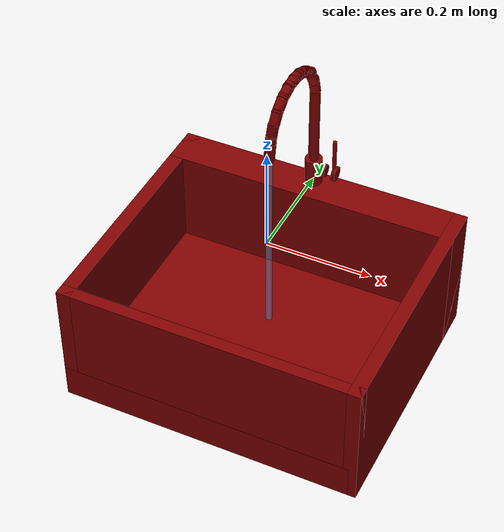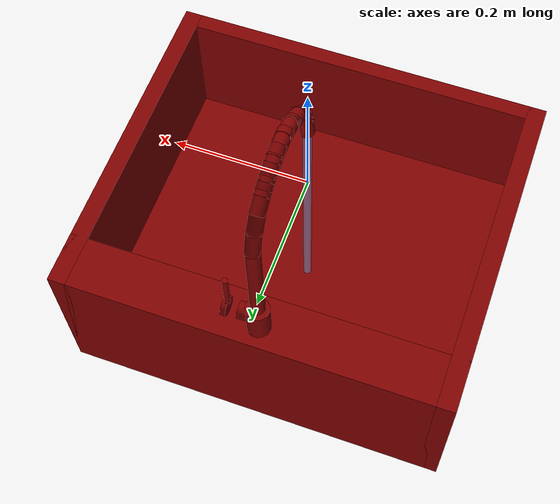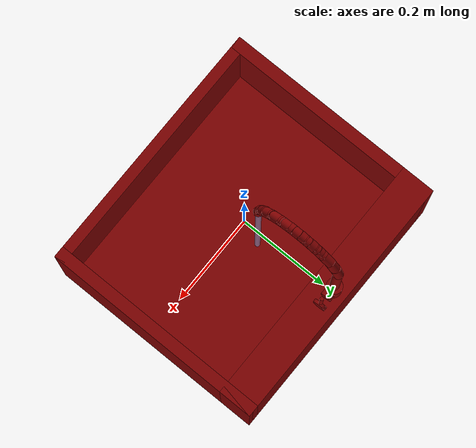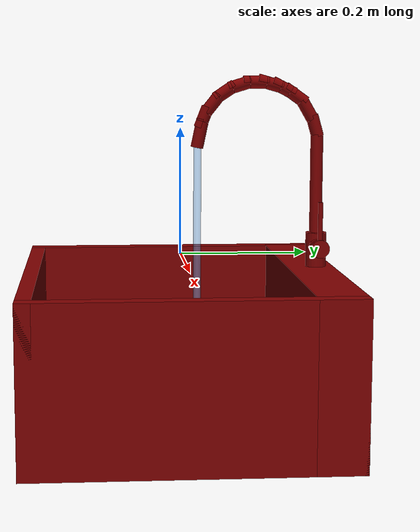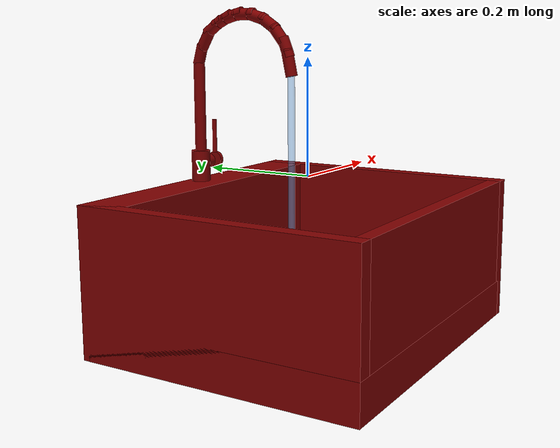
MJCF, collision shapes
<?xml version='1.0' encoding='UTF-8'?>
<mujoco model="model">
  <option timestep="0.002" gravity="0.0 0.0 -9.81"/>
  <compiler angle="radian"/>
  <asset>
    <mesh file="visuals/handle.obj" name="handle_vis"/>
    <mesh file="visuals/Body001.obj" name="Body001_vis"/>
    <mesh file="visuals/spout.obj" name="spout_vis"/>
    <texture file="visuals/T_BC001.png" name="Body001_material" type="2d"/>
    <material name="Body001_material" rgba="1 1 1 1.0" texture="Body001_material" shininess="0.2" specular="0.3"/>
    <texture file="visuals/T_BC001.png" name="handle_material" type="2d"/>
    <material name="handle_material" rgba="1 1 1 1.0" texture="handle_material" shininess="0.5" specular="0.8"/>
    <texture file="visuals/T_BC001.png" name="spout_material" type="2d"/>
    <material name="spout_material" rgba="1 1 1 1.0" texture="spout_material" shininess="0.5" specular="0.8"/>
  </asset>
  <default>
    <default class="visual">
      <geom conaffinity="0" contype="0" group="1" type="mesh"/>
    </default>
    <default class="collision">
      <geom group="0" rgba="0.5 0 0 0.5" solimp="0.998 0.998 0.001" solref="0.001 2"/>
    </default>
    <default class="spawn">
      <geom group="0" rgba="1 1 1 0.5" contype="0" conaffinity="0"/>
      <site group="0" rgba="1 1 1 0.5"/>
    </default>
    <default class="region">
      <geom group="1" conaffinity="0" contype="0" rgba="0 1 0 0"/>
    </default>
  </default>
  <worldbody>
    <body>
      <body name="object">
        <geom mesh="Body001_vis" type="mesh" solimp="0.998 0.998 0.001" solref="0.001 1" friction="0.95 0.3 0.1" class="visual" material="Body001_material"/>
        <geom class="collision" type="box" pos="0.0 0.21197830140590668 -0.15333899855613708" size="0.28999999165534973 0.0379241518676281 0.12788496911525726" quat="1.0 0.0 0.0 0.0"/>
        <geom class="collision" type="box" pos="-0.27640557289123535 -3.521563485264778e-09 -0.15333907306194305" size="0.013594459742307663 0.24990248680114746 0.12788505852222443" quat="1.0 0.0 0.0 0.0"/>
        <geom class="collision" type="box" pos="-0.007811218500137329 -0.005923365242779255 -0.2481245994567871" size="0.28218886256217957 0.24397926032543182 0.03309953957796097" quat="1.0 0.0 0.0 0.0"/>
        <geom class="collision" type="box" pos="0.27690646052360535 7.9016899690032e-09 -0.1533389687538147" size="0.013093541376292706 0.24990244209766388 0.12788502871990204" quat="1.0 0.0 0.0 0.0"/>
        <geom class="collision" type="box" pos="-2.2817403078079224e-08 -0.23811925947666168 -0.15333914756774902" size="0.28999999165534973 0.011783124879002571 0.127885103225708" quat="1.0 0.0 0.0 0.0"/>
        <geom class="collision" type="cylinder" pos="-0.008521336130797863 0.22017937898635864 0.003657592460513115" size="0.016683461144566536 0.02757469192147255" quat="0.7071068286895752 0.0 0.0 0.7071067690849304"/>
        <geom class="collision" type="cylinder" pos="0.004015771672129631 0.2198953628540039 0.009904640726745129" size="0.012313892133533955 0.013861095532774925" quat="0.49999722838401794 0.5000000596046448 0.5000027418136597 0.4999999403953552"/>
        <body name="handle">
          <joint axis="1.0 0.0 0.0" pos="0.026260405778884888 0.21996662020683289 0.010362421162426472" limited="true" name="handle_temp_joint" type="hinge" range="-0.7853981633974483 0.7853981633974483" damping="0.5" frictionloss="1" armature="2"/>
          <joint axis="0.0 1.0 0.0" pos="0.026260405778884888 0.21996662020683289 0.010362421162426472" limited="true" name="handle_joint" type="hinge" range="0 0.5" damping="0.5" frictionloss="1" armature="2"/>
          <geom mesh="handle_vis" type="mesh" solimp="0.998 0.998 0.001" solref="0.001 1" friction="0.95 0.3 0.1" class="visual" material="handle_material"/>
          <geom name="handle_main" class="collision" type="cylinder" pos="0.03340592980384827 0.21956302225589752 0.05337700992822647" size="0.0040099951438605785 0.030342772603034973" quat="0.7071068286895752 0.0 0.0 0.7071067690849304"/>
          <geom class="collision" type="cylinder" pos="0.03601875528693199 0.2199769765138626 0.00971183367073536" size="0.014395428821444511 0.0036695136222988367" quat="0.49999722838401794 0.5000000596046448 0.5000027418136597 0.4999999403953552"/>
        </body>
        <body name="spout">
          <joint axis="0.0 0.0 1.0" pos="-0.008934499695897102 0.21987931430339813 0.15196599066257477" limited="true" name="spout_joint" range="-1.0471975511965976 1.0471975511965976" type="hinge" damping="10"/>
          <site type="cylinder" rgba="0.5 0.75 1 0.5" size="0.006065879482775927 0.2152324616909027" pos="-0.009099733084440231 0.027332251891493797 -0.03505042940378189" name="water"/>
          <geom mesh="spout_vis" type="mesh" solimp="0.998 0.998 0.001" solref="0.001 1" friction="0.95 0.3 0.1" class="visual" material="spout_material"/>
          <geom class="collision" type="cylinder" pos="-0.00886296946555376 0.21938465535640717 0.11024174839258194" size="0.010048693045973778 0.0785842090845108" quat="1.0 0.0 0.0 0.0" name="spout_main"/>
          <geom class="collision" type="cylinder" pos="-0.00886296946555376 0.20319879055023193 0.22848886251449585" size="0.010048693045973778 0.017451457679271698" quat="0.9656886458396912 0.25970259308815 5.766556629770934e-17 -1.7851537715460202e-24"/>
          <geom class="collision" type="cylinder" pos="-0.00886296946555376 0.18345436453819275 0.25120916962623596" size="0.010048693045973778 0.019898122176527977" quat="0.8884070515632629 0.459056556224823 1.0193105151752095e-16 1.3295278680864922e-23"/>
          <geom class="collision" type="cylinder" pos="-0.00886296946555376 0.14356428384780884 0.2693922221660614" size="0.010048693045973778 0.020374983549118042" quat="0.7983346581459045 0.6022140383720398 1.3371837823062722e-16 1.0411496667633645e-23"/>
          <geom class="collision" type="cylinder" pos="-0.00886296946555376 0.09494275599718094 0.26721125841140747" size="0.010048693045973778 0.018348298966884613" quat="0.5963873863220215 0.8026967644691467 1.782344991760424e-16 -4.541982032717364e-25"/>
          <geom class="collision" type="cylinder" pos="-0.00886296946555376 0.05173811689019203 0.23765726387500763" size="0.010048693045973778 0.017533086240291595" quat="0.33013781905174255 0.9439327120780945 2.0959697930909653e-16 9.331002089905839e-23"/>
          <geom class="collision" type="cylinder" pos="-0.00886296946555376 0.03132658079266548 0.19109773635864258" size="0.010048693045973778 0.023006346076726913" quat="0.10297983139753342 0.9946834444999695 2.2086407922457523e-16 2.1929968316975463e-24"/>
          <geom class="collision" type="cylinder" pos="-0.00886296946555376 0.0715356096625328 0.2561853229999542" size="0.010048693045973778 0.018348298966884613" quat="0.4717880189418793 0.881712019443512 1.9577941024987594e-16 2.2470153838030487e-23"/>
          <geom class="collision" type="cylinder" pos="-0.00886296946555376 0.037656936794519424 0.2161986231803894" size="0.010048693045973778 0.017533086240291595" quat="0.1843382567167282 0.9828628897666931 2.1823940205371997e-16 2.4115640377952806e-23"/>
          <geom class="collision" type="cylinder" pos="-0.00886296946555376 0.12046951055526733 0.27161917090415955" size="0.010048693045973778 0.020374981686472893" quat="0.7158699631690979 0.6982336044311523 1.550390048412958e-16 -7.198455945476696e-24"/>
          <geom class="collision" type="cylinder" pos="-0.00886296946555376 0.1646672785282135 0.2623564898967743" size="0.010048693045973778 0.019898122176527977" quat="0.8523038625717163 0.5230469703674316 1.1613975789247092e-16 1.8351938614482215e-23"/>
          <geom class="collision" type="cylinder" pos="-0.00886296946555376 0.21559345722198486 0.20255321264266968" size="0.010048693045973778 0.017451457679271698" quat="0.9905076622962952 0.13745738565921783 3.052168081889604e-17 -1.780933119184055e-25"/>
        </body>
        <geom class="region" name="reg_basin" type="box" pos="0.000559389591217041 -0.024840429425239563 -0.12024475447833538" size="0.25643034076690674 0.19348773157596588 0.09030480666458607"/>
        <geom class="region" name="reg_main" type="box" pos="-7.450580596923828e-09 -1.4901161193847656e-08 -0.15333902835845947" size="0.29099999165534973 0.25090250170230866 0.12888501381874085"/>
      </body>
    </body>
  </worldbody>
  <actuator>
    <motor name="handle_joint_actuator" joint="handle_joint" gear="10"/>
    <motor name="handle_temp_joint_actuator" joint="handle_temp_joint" gear="10"/>
    <motor name="spout_joint_actuator" joint="spout_joint" gear="10"/>
  </actuator>
</mujoco>
